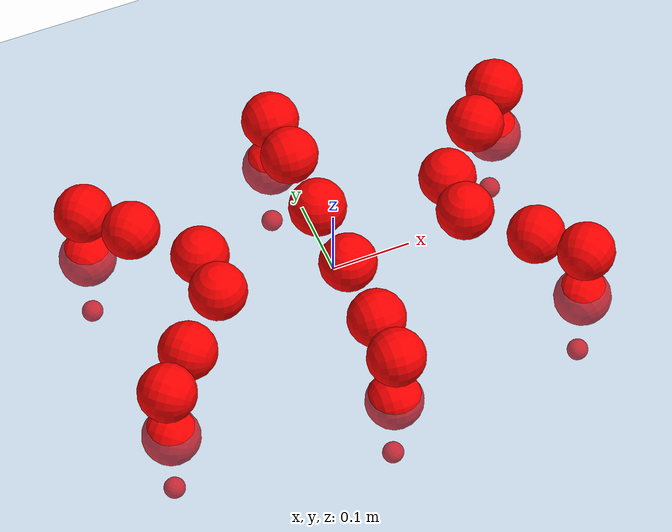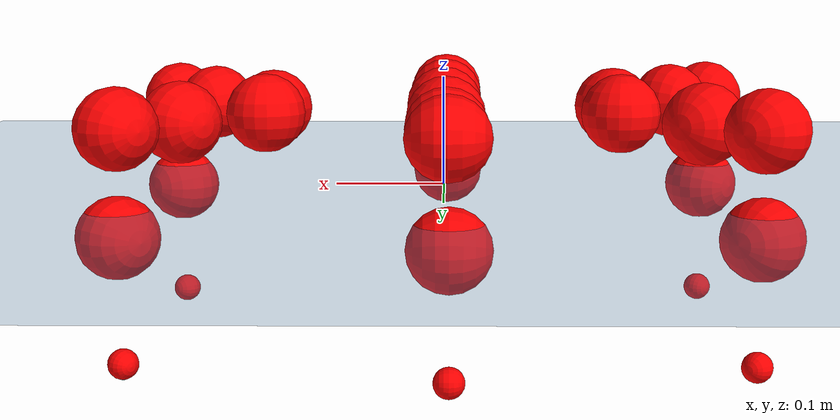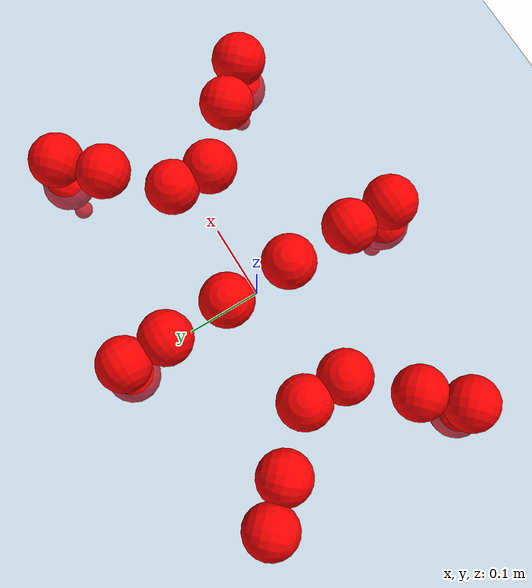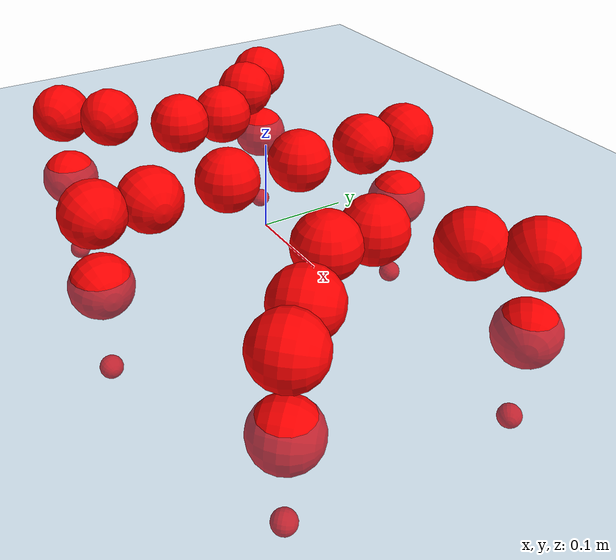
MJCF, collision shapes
<mujoco model="Golem">
  <compiler angle="radian" assetdir="assets" balanceinertia="true" inertiafromgeom="false"/>

  <option timestep="0.005" density="1.2" viscosity="2e-05"/>

  <size nkey="1"/>

  <visual>
    <quality shadowsize="8192"/>
    <map shadowclip="0.5"/>
  </visual>

  <default>
    <default class="/">
      <joint armature="0.01" damping="0.01" frictionloss="0.01"/>
      <geom contype="0" conaffinity="0" group="1" solref="-1000 -80"/>
      <site size="0.01 0.005 0.005" group="5"/>
      <general forcelimited="true" biastype="affine" gainprm="25" biasprm="0 -25 -0.5"/>
      <default class="visual">
        <geom type="mesh" group="2"/>
      </default>
      <default class="collision">
        <geom group="3"/>
      </default>
      <default class="foot">
        <geom size="0.01 0 0" condim="6" group="4" priority="1" solimp="0.015 1 0.01"/>
      </default>
      <default class="reward_collision_sphere">
        <geom group="5" rgba="1 0 0 1"/>
      </default>
    </default>
  </default>

  <asset>
    <texture type="skybox" colorspace="auto" name="//unnamed_texture_0" builtin="gradient" rgb1="0.95 0.95 0.95" rgb2="0.95 0.95 0.95" width="100" height="600"/>
    <texture type="2d" colorspace="auto" name="texplane" builtin="checker" rgb1="0.345 0.575 0.748" rgb2="0.345 0.575 0.748" markrgb="1 1 1" width="512" height="512"/>
    <material name="MatPlane" class="/" texture="texplane" texuniform="true" texrepeat="2 2" specular="0.9"/>
    <mesh name="body" class="/" file="body.stl" scale="0.001 0.001 0.001"/>
    <mesh name="coxa" class="/" file="coxa.stl" scale="0.001 0.001 0.001"/>
    <mesh name="femur" class="/" file="femur.stl" scale="0.001 0.001 0.001"/>
    <mesh name="tibia" class="/" file="tibia.stl" scale="0.001 0.001 0.001"/>
    <mesh name="tarsus" class="/" file="tarsus.stl" scale="0.001 0.001 0.001"/>
  </asset>

  <worldbody>
    <geom name="floor" class="/" size="100 100 0.125" type="plane" group="0" material="MatPlane"/>
    <light name="toplight_shadow" class="/" pos="0 0 5" dir="0.0990148 0.0990148 -0.990148" type="directional" ambient="0.04 0.04 0.04" diffuse="0.55 0.55 0.55" specular="0.12 0.12 0.12"/>
    <light name="toplight_fill" class="/" pos="0 0 5" dir="0.0990148 0.0990148 -0.990148" type="directional" castshadow="false" ambient="0.04 0.04 0.04" diffuse="0.3 0.3 0.3" specular="0.08 0.08 0.08"/>
    <body name="trunk" pos="-2.19578e-06 -0.000258956 0.000862644" quat="1 -0.000140833 -0.000244782 -0.000179072">
      <inertial pos="9.79183e-05 -0.00030033 -0.00318997" quat="0.999999 4.90734e-05 -0.000141642 0.00119617" mass="2.65678" diaginertia="0.0114081 0.000680936 0.0139947"/>
      <joint name="//unnamed_joint_0" type="free"/>
      <geom name="//unnamed_geom_1" class="/" pos="0 0 0.0684478" quat="1 0 0 0" type="mesh" rgba="0.9 0.9 0.9 1" mesh="body"/>
      <site name="imu" class="/" pos="0.13114 -0.00290808 0.108727" size="0.00892821"/>
      <camera name="track" class="/" pos="0 -1.16547 0" quat="0.707107 0.707107 0 0" mode="trackcom"/>
      <camera name="ego_camera" class="/" pos="0.13341 0 0.10695" quat="-0.5 -0.5 0.5 0.5"/>
      <body name="coxa_RR" pos="-0.181218 -0.0496719 0.0697041" quat="0.382698 -0.000156272 -0.000175124 -0.923873">
        <inertial pos="-0.000758911 0.000240428 0.00169377" quat="0.999999 -0.000547987 -0.000996221 0.000901428" mass="0.140765" diaginertia="0.0112647 0.000666073 0.01403"/>
        <joint name="coxa_joint_RR" class="/" pos="0 0 0" axis="0.000692274 5.33904e-05 -1" range="-3.14281 3.13199" armature="0.0090533" damping="0.00871535" frictionloss="0.00893371"/>
        <geom name="//unnamed_geom_2" class="/" type="mesh" rgba="0.2 0.2 0.2 1" mesh="coxa"/>
        <geom name="//unnamed_geom_3" class="reward_collision_sphere" size="0.0357128" pos="-0.0307869 0 0"/>
        <body name="femur_RR" pos="0.0618223 0.00196207 -0.00151227" quat="0.499975 -0.50006 0.500111 0.499854">
          <inertial pos="3.00247e-05 1.83125e-05 -0.000677347" quat="0.999991 -0.000579759 0.00363711 0.00213806" mass="0.142493" diaginertia="0.0113221 0.000678841 0.0140709"/>
          <joint name="femur_joint_RR" class="/" pos="0 0 0" axis="-0.000406986 -0.00159517 -0.999999" range="-3.134 3.13356" armature="0.00865193" damping="0" frictionloss="0.00895699"/>
          <geom name="//unnamed_geom_4" class="/" type="mesh" rgba="0.9 0.9 0.9 1" mesh="femur"/>
          <geom name="//unnamed_geom_5" class="reward_collision_sphere" size="0.0357128"/>
          <body name="tibia_RR" pos="0.000914693 -0.063554 0.00194003" quat="-4.63248e-05 1 -1.55074e-05 -4.62018e-05">
            <inertial pos="-0.000102503 0.000159675 0.000219917" quat="1 -3.80276e-05 0.000225615 -4.88592e-05" mass="0.143774" diaginertia="0.0115259 0.000677285 0.0141906"/>
            <joint name="tibia_joint_RR" class="/" pos="0 0 0" axis="-4.55423e-05 -6.48782e-05 1" range="-3.14025 3.14574" armature="0.00928737" damping="0" frictionloss="0.00918718"/>
            <geom name="//unnamed_geom_6" class="/" type="mesh" rgba="0.2 0.2 0.2 1" mesh="tibia"/>
            <geom name="//unnamed_geom_7" class="reward_collision_sphere" size="0.0357128"/>
            <body name="tarsus_RR" pos="0.0898725 -0.00107187 -0.00126338" quat="1 -8.02906e-05 7.01874e-06 0.000269099">
              <inertial pos="0.0605975 0.000361377 -0.0009726" quat="0.498403 0.500606 0.499058 0.501926" mass="0.142864" diaginertia="0.0114733 0.000671487 0.0141519"/>
              <joint name="tarsus_joint_RR" class="/" pos="0 0 0" axis="0.00156681 0.00252911 0.999996" range="-3.12432 3.14346" armature="0.00879151" damping="0.00435593" frictionloss="0.00892135"/>
              <geom name="//unnamed_geom_8" class="/" type="mesh" rgba="0.9 0.9 0.9 1" mesh="tarsus"/>
              <geom name="foot_1" class="foot" size="0.00895845" pos="0.114938 0 0" quat="0 -0.707107 0 0.707107"/>
              <geom name="//unnamed_geom_10" class="reward_collision_sphere" size="0.0357128"/>
              <geom name="//unnamed_geom_11" class="reward_collision_sphere" size="0.0133923" pos="0.11032 0 0"/>
              <site name="foot_1" class="foot" pos="0.114938 0 0" quat="0 -0.707107 0 0.707107" size="0.00892821"/>
            </body>
          </body>
        </body>
      </body>
      <body name="coxa_RM" pos="-0.000474556 -0.0776898 0.0691215" quat="0.707122 0.000148373 0.000195814 -0.707091">
        <inertial pos="4.56786e-05 0.000168911 0.000825107" quat="0.999999 -0.000946673 -0.00101711 -0.000963427" mass="0.144041" diaginertia="0.0114014 0.000675248 0.0139257"/>
        <joint name="coxa_joint_RM" class="/" pos="0 0 0" axis="-0.000984853 0.000394368 -0.999999" range="-3.13899 3.15144" armature="0.00873503" damping="0.00800632" frictionloss="0.00854154"/>
        <geom name="//unnamed_geom_12" class="/" type="mesh" rgba="0.2 0.2 0.2 1" mesh="coxa"/>
        <geom name="//unnamed_geom_13" class="reward_collision_sphere" size="0.0357128" pos="-0.0307869 0 0"/>
        <body name="femur_RM" pos="0.0588741 -0.000675598 0.00100655" quat="0.499989 -0.50001 0.500013 0.499988">
          <inertial pos="0.00021615 -0.00110889 0.000119046" quat="0.999999 -0.000757007 0.000899289 -0.000315311" mass="0.140883" diaginertia="0.0114357 0.000670118 0.0140644"/>
          <joint name="femur_joint_RM" class="/" pos="0 0 0" axis="0.000506842 0.00103404 -0.999999" range="-3.15244 3.1277" armature="0.00853845" damping="0.00578267" frictionloss="0.00877818"/>
          <geom name="//unnamed_geom_14" class="/" type="mesh" rgba="0.9 0.9 0.9 1" mesh="femur"/>
          <geom name="//unnamed_geom_15" class="reward_collision_sphere" size="0.0357128"/>
          <body name="tibia_RM" pos="-0.000662118 -0.0613671 -0.000691378" quat="-2.76441e-05 1 -1.65873e-05 -2.81777e-05">
            <inertial pos="-0.000266081 -0.000289443 -0.000690506" quat="0.999998 0.000943901 0.00166484 0.000803205" mass="0.142088" diaginertia="0.011372 0.000672432 0.014089"/>
            <joint name="tibia_joint_RM" class="/" pos="0 0 0" axis="-0.000711106 0.00017137 1" range="-3.14305 3.12113" armature="0.00892302" damping="0.00481412" frictionloss="0.00888055"/>
            <geom name="//unnamed_geom_16" class="/" type="mesh" rgba="0.2 0.2 0.2 1" mesh="tibia"/>
            <geom name="//unnamed_geom_17" class="reward_collision_sphere" size="0.0357128"/>
            <body name="tarsus_RM" pos="0.0879966 -0.000187468 0.00119398" quat="1 0.000163865 -0.000404267 3.06823e-05">
              <inertial pos="0.0619272 0.000482469 0.000382476" quat="0.499418 0.500666 0.500262 0.499652" mass="0.14071" diaginertia="0.0113982 0.000670772 0.0139689"/>
              <joint name="tarsus_joint_RM" class="/" pos="0 0 0" axis="0.000508148 0.000240786 1" range="-3.13871 3.12944" armature="0.00911063" damping="0.00272532" frictionloss="0.00914249"/>
              <geom name="//unnamed_geom_18" class="/" type="mesh" rgba="0.9 0.9 0.9 1" mesh="tarsus"/>
              <geom name="foot_2" class="foot" size="0.00930912" pos="0.114938 0 0" quat="0 -0.707107 0 0.707107"/>
              <geom name="//unnamed_geom_20" class="reward_collision_sphere" size="0.0357128"/>
              <geom name="//unnamed_geom_21" class="reward_collision_sphere" size="0.0133923" pos="0.11032 0 0"/>
              <site name="foot_2" class="foot" pos="0.114938 0 0" quat="0 -0.707107 0 0.707107" size="0.00892821"/>
            </body>
          </body>
        </body>
      </body>
      <body name="coxa_RF" pos="0.182399 -0.0492264 0.0677283" quat="0.923903 5.16484e-06 -6.89761e-05 -0.382626">
        <inertial pos="0.000183138 -0.00071413 0.00083989" quat="0.999991 -0.00215684 -0.000312789 -0.00362475" mass="0.143117" diaginertia="0.0114977 0.000677523 0.0140859"/>
        <joint name="coxa_joint_RF" class="/" pos="0 0 0" axis="0.000227073 0.000690081 -1" range="-3.14447 3.15544" armature="0.00880043" damping="0.00574694" frictionloss="0.0088022"/>
        <geom name="//unnamed_geom_22" class="/" type="mesh" rgba="0.2 0.2 0.2 1" mesh="coxa"/>
        <geom name="//unnamed_geom_23" class="reward_collision_sphere" size="0.0357128" pos="-0.0307869 0 0"/>
        <body name="femur_RF" pos="0.0608673 0.000287855 -0.00144152" quat="0.499936 -0.500087 0.500191 0.499786">
          <inertial pos="0.000160389 1.56799e-05 -0.000428013" quat="0.999994 0.000643641 -0.00164938 0.00303068" mass="0.142393" diaginertia="0.0115314 0.000679773 0.0141349"/>
          <joint name="femur_joint_RF" class="/" pos="0 0 0" axis="6.49879e-06 6.53072e-05 -1" range="-3.147 3.13687" armature="0.00882204" damping="0.0039512" frictionloss="0.00889341"/>
          <geom name="//unnamed_geom_24" class="/" type="mesh" rgba="0.9 0.9 0.9 1" mesh="femur"/>
          <geom name="//unnamed_geom_25" class="reward_collision_sphere" size="0.0357128"/>
          <body name="tibia_RF" pos="0.000508376 -0.0642063 -0.000615231" quat="-0.00013794 1 5.30617e-05 -6.42405e-05">
            <inertial pos="0.000320519 0.000419489 0.00060542" quat="0.999999 -0.00119436 8.96858e-05 -0.00116075" mass="0.140844" diaginertia="0.0112965 0.000663779 0.0139363"/>
            <joint name="tibia_joint_RF" class="/" pos="0 0 0" axis="-0.00250163 -7.04647e-05 0.999997" range="-3.12805 3.13569" armature="0.00886181" damping="0" frictionloss="0.0092908"/>
            <geom name="//unnamed_geom_26" class="/" type="mesh" rgba="0.2 0.2 0.2 1" mesh="tibia"/>
            <geom name="//unnamed_geom_27" class="reward_collision_sphere" size="0.0357128"/>
            <body name="tarsus_RF" pos="0.09031 0.000552806 0.000250066" quat="1 2.72202e-05 -7.64626e-05 -4.0516e-06">
              <inertial pos="0.0617455 0.000494832 0.000197159" quat="0.500024 0.500293 0.499821 0.499862" mass="0.142707" diaginertia="0.0115094 0.00068084 0.0141028"/>
              <joint name="tarsus_joint_RF" class="/" pos="0 0 0" axis="0.00184839 0.0043472 0.999989" range="-3.14114 3.12804" armature="0.00872948" damping="0" frictionloss="0.00859233"/>
              <geom name="//unnamed_geom_28" class="/" type="mesh" rgba="0.9 0.9 0.9 1" mesh="tarsus"/>
              <geom name="foot_3" class="foot" size="0.00890311" pos="0.114938 0 0" quat="0 -0.707107 0 0.707107"/>
              <geom name="//unnamed_geom_30" class="reward_collision_sphere" size="0.0357128"/>
              <geom name="//unnamed_geom_31" class="reward_collision_sphere" size="0.0133923" pos="0.11032 0 0"/>
              <site name="foot_3" class="foot" pos="0.114938 0 0" quat="0 -0.707107 0 0.707107" size="0.00892821"/>
            </body>
          </body>
        </body>
      </body>
      <body name="coxa_LR" pos="-0.181855 0.0521677 0.0688373" quat="0.382842 -7.57413e-06 -1.9111e-06 0.923814">
        <inertial pos="0.000831126 -0.000867935 0.00112305" quat="0.999998 0.000998576 -0.00158982 -0.00107386" mass="0.143476" diaginertia="0.0113954 0.000682484 0.0140573"/>
        <joint name="coxa_joint_LR" class="/" pos="0 0 0" axis="0.00102843 6.4005e-05 -0.999999" range="-3.1308 3.13342" armature="0.00898473" damping="0.00436182" frictionloss="0.00855321"/>
        <geom name="//unnamed_geom_32" class="/" type="mesh" rgba="0.2 0.2 0.2 1" mesh="coxa"/>
        <geom name="//unnamed_geom_33" class="reward_collision_sphere" size="0.0357128" pos="-0.0307869 0 0"/>
        <body name="femur_LR" pos="0.0618577 -0.00353304 -0.00123904" quat="0.500164 -0.500035 0.499931 0.49987">
          <inertial pos="-0.000278884 -0.00108825 -2.61552e-05" quat="1 0.000155288 3.53127e-05 -0.000102709" mass="0.142242" diaginertia="0.0112023 0.000665439 0.0140589"/>
          <joint name="femur_joint_LR" class="/" pos="0 0 0" axis="0.0047424 0.00122698 0.999988" range="-3.12916 3.13744" armature="0.00914815" damping="0.00474076" frictionloss="0.00900614"/>
          <geom name="//unnamed_geom_34" class="/" type="mesh" rgba="0.9 0.9 0.9 1" mesh="femur"/>
          <geom name="//unnamed_geom_35" class="reward_collision_sphere" size="0.0357128"/>
          <body name="tibia_LR" pos="0.000284755 -0.0638046 -0.00151608" quat="6.09898e-05 1 -8.31247e-05 -3.08209e-05">
            <inertial pos="0.000491397 0.00051223 -0.000575781" quat="0.999991 -0.00365995 -0.00158912 -0.0016049" mass="0.142625" diaginertia="0.0115099 0.000672453 0.0141124"/>
            <joint name="tibia_joint_LR" class="/" pos="0 0 0" axis="-0.00286721 0.00146777 -0.999995" range="-3.13834 3.1224" armature="0.00925155" damping="0.00384413" frictionloss="0.00894412"/>
            <geom name="//unnamed_geom_36" class="/" type="mesh" rgba="0.2 0.2 0.2 1" mesh="tibia"/>
            <geom name="//unnamed_geom_37" class="reward_collision_sphere" size="0.0357128"/>
            <body name="tarsus_LR" pos="0.0907361 0.000319218 0.00165463" quat="1 3.08076e-05 1.15077e-05 5.63463e-06">
              <inertial pos="0.0618884 0.000944442 0.000444097" quat="0.499999 0.500002 0.5 0.5" mass="0.142353" diaginertia="0.0113561 0.000675091 0.0138414"/>
              <joint name="tarsus_joint_LR" class="/" pos="0 0 0" axis="6.21651e-06 5.80171e-05 -1" range="-3.14662 3.12119" armature="0.00887536" damping="0" frictionloss="0.00928884"/>
              <geom name="//unnamed_geom_38" class="/" type="mesh" rgba="0.9 0.9 0.9 1" mesh="tarsus"/>
              <geom name="foot_4" class="foot" size="0.00851736" pos="0.114938 0 0" quat="0.707107 0 -0.707107 0"/>
              <geom name="//unnamed_geom_40" class="reward_collision_sphere" size="0.0357128"/>
              <geom name="//unnamed_geom_41" class="reward_collision_sphere" size="0.0133923" pos="0.11032 0 0"/>
              <site name="foot_4" class="foot" pos="0.114938 0 0" quat="0.707107 0 -0.707107 0" size="0.00892821"/>
            </body>
          </body>
        </body>
      </body>
      <body name="coxa_LM" pos="-0.00224966 0.0756443 0.0684491" quat="0.707097 4.81162e-05 -1.39964e-05 0.707117">
        <inertial pos="-2.57813e-05 0.000176238 0.000809413" quat="0.999998 0.00174939 0.000480643 0.00015603" mass="0.143335" diaginertia="0.0113783 0.000674508 0.0140764"/>
        <joint name="coxa_joint_LM" class="/" pos="0 0 0" axis="-0.00507985 0.00224036 -0.999985" range="-3.14593 3.13979" armature="0.00900875" damping="0.00745426" frictionloss="0.00893154"/>
        <geom name="//unnamed_geom_42" class="/" type="mesh" rgba="0.2 0.2 0.2 1" mesh="coxa"/>
        <geom name="//unnamed_geom_43" class="reward_collision_sphere" size="0.0357128" pos="-0.0307869 0 0"/>
        <body name="femur_LM" pos="0.0579449 0.000942317 -0.00124417" quat="0.499993 -0.49988 0.500315 0.499811">
          <inertial pos="0.000717909 0.000140441 -0.000439089" quat="0.999992 -0.000658415 -0.00051258 0.00392002" mass="0.143678" diaginertia="0.0114399 0.000675596 0.0140681"/>
          <joint name="femur_joint_LM" class="/" pos="0 0 0" axis="0.00578419 -0.00332673 0.999978" range="-3.13003 3.13325" armature="0.00927461" damping="0.00448574" frictionloss="0.00918478"/>
          <geom name="//unnamed_geom_44" class="/" type="mesh" rgba="0.9 0.9 0.9 1" mesh="femur"/>
          <geom name="//unnamed_geom_45" class="reward_collision_sphere" size="0.0357128"/>
          <body name="tibia_LM" pos="-0.000139077 -0.0598837 0.00149592" quat="0.000228404 1 -3.12454e-06 -0.000247743">
            <inertial pos="-0.000490643 -0.00138319 -6.19345e-05" quat="0.999999 -0.00042078 0.000527584 0.00128127" mass="0.139984" diaginertia="0.0113052 0.000668129 0.0139148"/>
            <joint name="tibia_joint_LM" class="/" pos="0 0 0" axis="-0.00070372 0.00174612 -0.999998" range="-3.15246 3.1521" armature="0.00925416" damping="0" frictionloss="0.0086291"/>
            <geom name="//unnamed_geom_46" class="/" type="mesh" rgba="0.2 0.2 0.2 1" mesh="tibia"/>
            <geom name="//unnamed_geom_47" class="reward_collision_sphere" size="0.0357128"/>
            <body name="tarsus_LM" pos="0.09031 -0.000395747 -0.000907308" quat="1 -0.000132443 5.4579e-05 -0.000157736">
              <inertial pos="0.0628471 0.000223475 2.58723e-05" quat="0.497741 0.501949 0.5008 0.4995" mass="0.141" diaginertia="0.0112381 0.000661524 0.0138811"/>
              <joint name="tarsus_joint_LM" class="/" pos="0 0 0" axis="-0.000634925 -2.40658e-05 -1" range="-3.14004 3.13741" armature="0.00879313" damping="0.000362803" frictionloss="0.00904979"/>
              <geom name="//unnamed_geom_48" class="/" type="mesh" rgba="0.9 0.9 0.9 1" mesh="tarsus"/>
              <geom name="foot_5" class="foot" size="0.00872156" pos="0.114938 0 0" quat="0.707107 0 -0.707107 0"/>
              <geom name="//unnamed_geom_50" class="reward_collision_sphere" size="0.0357128"/>
              <geom name="//unnamed_geom_51" class="reward_collision_sphere" size="0.0133923" pos="0.11032 0 0"/>
              <site name="foot_5" class="foot" pos="0.114938 0 0" quat="0.707107 0 -0.707107 0" size="0.00892821"/>
            </body>
          </body>
        </body>
      </body>
      <body name="coxa_LF" pos="0.183045 0.0490699 0.068731" quat="0.924019 0.000149936 0.000194993 0.382348">
        <inertial pos="0.000234866 -0.00038042 0.000847833" quat="0.999998 0.00128487 -0.0011765 -5.58623e-05" mass="0.143254" diaginertia="0.0114812 0.0006742 0.0139817"/>
        <joint name="coxa_joint_LF" class="/" pos="0 0 0" axis="0.00386063 -0.000518089 -0.999992" range="-3.12356 3.13983" armature="0.00885973" damping="0.00422979" frictionloss="0.00927935"/>
        <geom name="//unnamed_geom_52" class="/" type="mesh" rgba="0.2 0.2 0.2 1" mesh="coxa"/>
        <geom name="//unnamed_geom_53" class="reward_collision_sphere" size="0.0357128" pos="-0.0307869 0 0"/>
        <body name="femur_LF" pos="0.0613025 5.94947e-06 -0.000682769" quat="0.500097 -0.499997 0.500132 0.499774">
          <inertial pos="0.000109469 0.000807095 0.000345952" quat="1 0.000195363 -7.89799e-05 0.000223936" mass="0.143595" diaginertia="0.011427 0.000675664 0.0140679"/>
          <joint name="femur_joint_LF" class="/" pos="0 0 0" axis="-0.000593892 -0.000170465 1" range="-3.12924 3.12429" armature="0.00911404" damping="0.00159815" frictionloss="0.00884906"/>
          <geom name="//unnamed_geom_54" class="/" type="mesh" rgba="0.9 0.9 0.9 1" mesh="femur"/>
          <geom name="//unnamed_geom_55" class="reward_collision_sphere" size="0.0357128"/>
          <body name="tibia_LF" pos="0.000630618 -0.0632854 -0.000645747" quat="0.000400566 1 -0.000198002 -0.000257615">
            <inertial pos="-0.000835484 -0.000178837 0.000618288" quat="0.999999 0.000549824 0.000654806 -0.00123556" mass="0.139995" diaginertia="0.0114366 0.00066821 0.0140502"/>
            <joint name="tibia_joint_LF" class="/" pos="0 0 0" axis="0.00504292 -0.00437107 -0.999978" range="-3.14541 3.15323" armature="0.00899785" damping="0" frictionloss="0.00911326"/>
            <geom name="//unnamed_geom_56" class="/" type="mesh" rgba="0.2 0.2 0.2 1" mesh="tibia"/>
            <geom name="//unnamed_geom_57" class="reward_collision_sphere" size="0.0357128"/>
            <body name="tarsus_LF" pos="0.0919679 0.00155435 0.000711373" quat="1 3.24371e-06 4.3923e-05 4.36767e-05">
              <inertial pos="0.0627475 0.00066222 -0.000247203" quat="0.497666 0.499878 0.502158 0.500288" mass="0.142638" diaginertia="0.0113345 0.000671183 0.0140155"/>
              <joint name="tarsus_joint_LF" class="/" pos="0 0 0" axis="0.0025013 -0.000372147 -0.999997" stiffness="0.0275131" range="-3.14586 3.15323" armature="0.00898738" damping="0.0234601" frictionloss="0.009127"/>
              <geom name="//unnamed_geom_58" class="/" type="mesh" rgba="0.9 0.9 0.9 1" mesh="tarsus"/>
              <geom name="foot_6" class="foot" size="0.00912596" pos="0.114938 0 0" quat="0.707107 0 -0.707107 0"/>
              <geom name="//unnamed_geom_60" class="reward_collision_sphere" size="0.0357128"/>
              <geom name="//unnamed_geom_61" class="reward_collision_sphere" size="0.0133923" pos="0.11032 0 0"/>
              <site name="foot_6" class="foot" pos="0.114938 0 0" quat="0.707107 0 -0.707107 0" size="0.00892821"/>
            </body>
          </body>
        </body>
      </body>
    </body>
  </worldbody>

  <contact>
    <pair class="/" geom1="floor" geom2="foot_1" name="//unnamed_contact_0"/>
    <pair class="/" geom1="floor" geom2="foot_2" name="//unnamed_contact_1"/>
    <pair class="/" geom1="floor" geom2="foot_3" name="//unnamed_contact_2"/>
    <pair class="/" geom1="floor" geom2="foot_4" name="//unnamed_contact_3"/>
    <pair class="/" geom1="floor" geom2="foot_5" name="//unnamed_contact_4"/>
    <pair class="/" geom1="floor" geom2="foot_6" name="//unnamed_contact_5"/>
  </contact>

  <actuator>
    <general name="coxa_joint_RR" class="/" joint="coxa_joint_RR" forcerange="-6.52231 6.52231" gainprm="21.6262" biasprm="0 -21.6262 -0.470401"/>
    <general name="femur_joint_RR" class="/" joint="femur_joint_RR" forcerange="-6.62414 6.62414" gainprm="21.6262" biasprm="0 -21.6262 -0.470401"/>
    <general name="tibia_joint_RR" class="/" joint="tibia_joint_RR" forcerange="-6.55419 6.55419" gainprm="21.6262" biasprm="0 -21.6262 -0.470401"/>
    <general name="tarsus_joint_RR" class="/" joint="tarsus_joint_RR" forcerange="-6.35531 6.35531" gainprm="21.6262" biasprm="0 -21.6262 -0.470401"/>
    <general name="coxa_joint_RM" class="/" joint="coxa_joint_RM" forcerange="-6.54244 6.54244" gainprm="21.6262" biasprm="0 -21.6262 -0.470401"/>
    <general name="femur_joint_RM" class="/" joint="femur_joint_RM" forcerange="-6.36192 6.36192" gainprm="21.6262" biasprm="0 -21.6262 -0.470401"/>
    <general name="tibia_joint_RM" class="/" joint="tibia_joint_RM" forcerange="-6.60645 6.60645" gainprm="21.6262" biasprm="0 -21.6262 -0.470401"/>
    <general name="tarsus_joint_RM" class="/" joint="tarsus_joint_RM" forcerange="-6.45508 6.45508" gainprm="21.6262" biasprm="0 -21.6262 -0.470401"/>
    <general name="coxa_joint_RF" class="/" joint="coxa_joint_RF" forcerange="-6.6843 6.6843" gainprm="21.6262" biasprm="0 -21.6262 -0.470401"/>
    <general name="femur_joint_RF" class="/" joint="femur_joint_RF" forcerange="-6.53874 6.53874" gainprm="21.6262" biasprm="0 -21.6262 -0.470401"/>
    <general name="tibia_joint_RF" class="/" joint="tibia_joint_RF" forcerange="-6.54288 6.54288" gainprm="21.6262" biasprm="0 -21.6262 -0.470401"/>
    <general name="tarsus_joint_RF" class="/" joint="tarsus_joint_RF" forcerange="-6.57796 6.57796" gainprm="21.6262" biasprm="0 -21.6262 -0.470401"/>
    <general name="coxa_joint_LR" class="/" joint="coxa_joint_LR" forcerange="-6.51723 6.51723" gainprm="21.6262" biasprm="0 -21.6262 -0.470401"/>
    <general name="femur_joint_LR" class="/" joint="femur_joint_LR" forcerange="-6.53481 6.53481" gainprm="21.6262" biasprm="0 -21.6262 -0.470401"/>
    <general name="tibia_joint_LR" class="/" joint="tibia_joint_LR" forcerange="-6.57687 6.57687" gainprm="21.6262" biasprm="0 -21.6262 -0.470401"/>
    <general name="tarsus_joint_LR" class="/" joint="tarsus_joint_LR" forcerange="-6.48212 6.48212" gainprm="21.6262" biasprm="0 -21.6262 -0.470401"/>
    <general name="coxa_joint_LM" class="/" joint="coxa_joint_LM" forcerange="-6.40678 6.40678" gainprm="21.6262" biasprm="0 -21.6262 -0.470401"/>
    <general name="femur_joint_LM" class="/" joint="femur_joint_LM" forcerange="-6.42503 6.42503" gainprm="21.6262" biasprm="0 -21.6262 -0.470401"/>
    <general name="tibia_joint_LM" class="/" joint="tibia_joint_LM" forcerange="-6.52048 6.52048" gainprm="21.6262" biasprm="0 -21.6262 -0.470401"/>
    <general name="tarsus_joint_LM" class="/" joint="tarsus_joint_LM" forcerange="-6.47928 6.47928" gainprm="21.6262" biasprm="0 -21.6262 -0.470401"/>
    <general name="coxa_joint_LF" class="/" joint="coxa_joint_LF" forcerange="-6.6782 6.6782" gainprm="21.6262" biasprm="0 -21.6262 -0.470401"/>
    <general name="femur_joint_LF" class="/" joint="femur_joint_LF" forcerange="-6.53507 6.53507" gainprm="21.6262" biasprm="0 -21.6262 -0.470401"/>
    <general name="tibia_joint_LF" class="/" joint="tibia_joint_LF" forcerange="-6.48985 6.48985" gainprm="21.6262" biasprm="0 -21.6262 -0.470401"/>
    <general name="tarsus_joint_LF" class="/" joint="tarsus_joint_LF" forcerange="-6.5145 6.5145" gainprm="21.6262" biasprm="0 -21.6262 -0.470401"/>
  </actuator>

  <sensor>
    <gyro site="imu" name="imu_angular_velocity"/>
    <velocimeter site="imu" name="imu_linear_velocity"/>
    <framelinvel objtype="site" objname="foot_1" name="foot_1_global_linear_velocity"/>
    <framelinvel objtype="site" objname="foot_2" name="foot_2_global_linear_velocity"/>
    <framelinvel objtype="site" objname="foot_3" name="foot_3_global_linear_velocity"/>
    <framelinvel objtype="site" objname="foot_4" name="foot_4_global_linear_velocity"/>
    <framelinvel objtype="site" objname="foot_5" name="foot_5_global_linear_velocity"/>
    <framelinvel objtype="site" objname="foot_6" name="foot_6_global_linear_velocity"/>
  </sensor>

  <keyframe>
    <key name="home" qpos="0 0 0.1457 1 0 0 0 0 0 0 0 0 0 0 0 0 0 0 0 0 0 0 0 0 0 0 0 0 0 0 0"/>
  </keyframe>
</mujoco>
